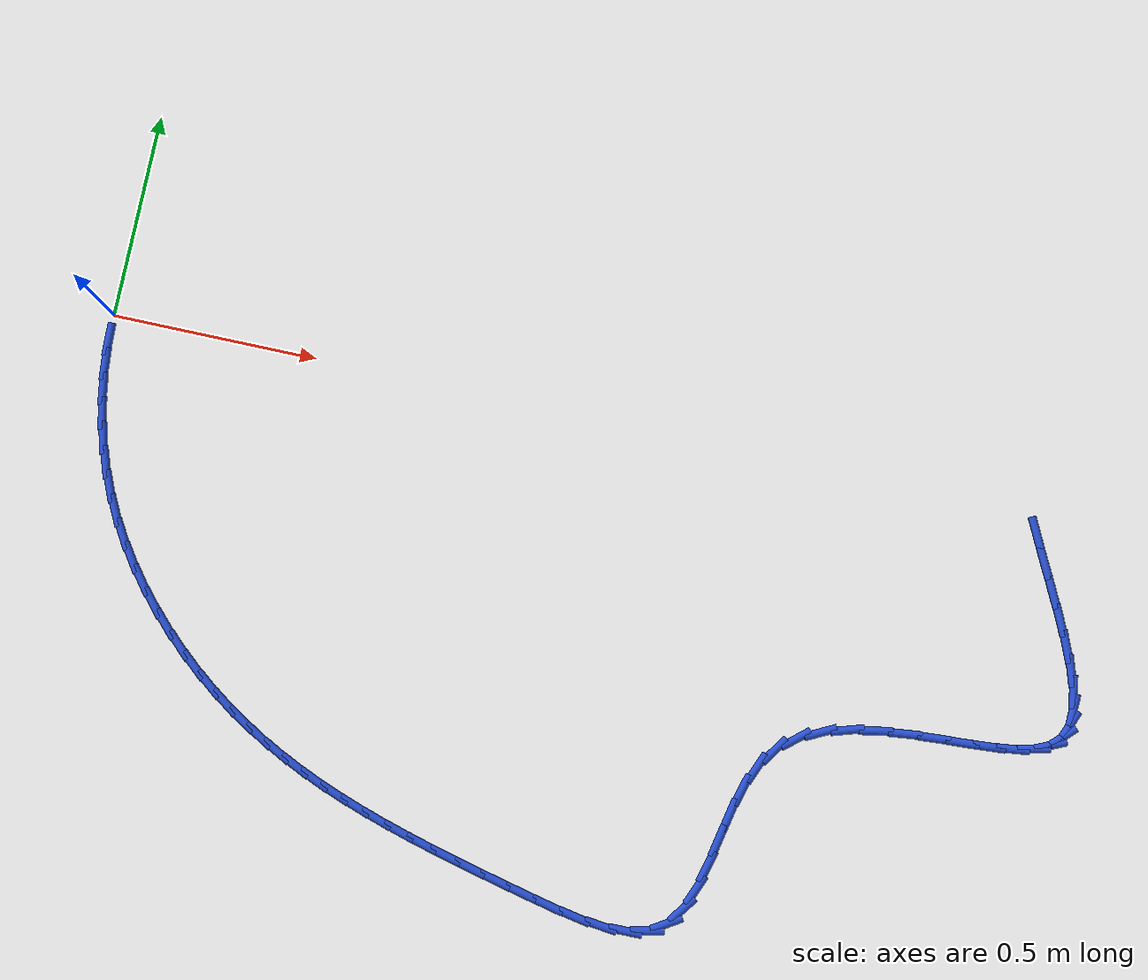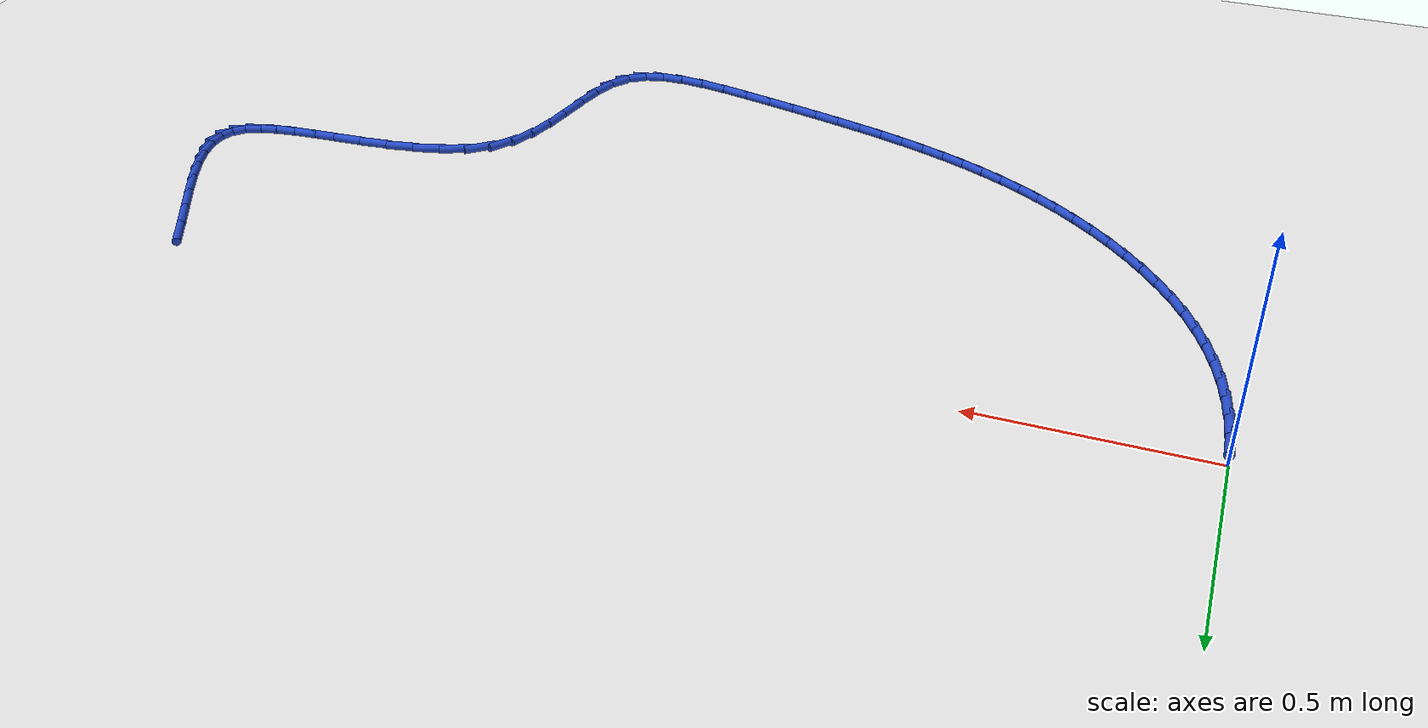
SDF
<sdf version="1.6">
 <world name="default">
  <model name="ground_plane">
   <static>1</static>
   <link name="link">
    <collision name="collision">
     <geometry><plane><normal>0 0 1</normal><size>100 100</size></plane></geometry>
     <surface><friction><ode><mu>100</mu><mu2>50</mu2></ode></friction></surface>
    </collision>
    <visual name="visual">
     <cast_shadows>0</cast_shadows>
     <geometry><plane><normal>0 0 1</normal><size>100 100</size></plane></geometry>
     <material>
      <script><uri>file://media/materials/scripts/gazebo.material</uri><name>Gazebo/WhiteGlow</name></script>
     </material>
    </visual>
   </link>
  </model>
  <model name="line">
   <link name="link_64">
    <pose>2.277415962909671 -0.04905458401612376 0.01 0 1.57 -1.1139004128579038</pose>
    <collision name="collision">
     <geometry><cylinder><radius>0.01</radius><length>0.08</length></cylinder></geometry>
    </collision>
    <visual name="visual">
     <material>
      <script><name>Gazebo/Blue</name><uri>file://media/materials/scripts/gazebo.material</uri></script>
     </material>
     <geometry><cylinder><radius>0.01</radius><length>0.08</length></cylinder></geometry>
    </visual>
   </link>
   <link name="link_65">
    <pose>2.3105045280904344 -0.11636404134737917 0.01 0 1.57 -1.1078029504991191</pose>
    <collision name="collision">
     <geometry><cylinder><radius>0.01</radius><length>0.08</length></cylinder></geometry>
    </collision>
    <visual name="visual">
     <material>
      <script><name>Gazebo/Blue</name><uri>file://media/materials/scripts/gazebo.material</uri></script>
     </material>
     <geometry><cylinder><radius>0.01</radius><length>0.08</length></cylinder></geometry>
    </visual>
   </link>
   <link name="link_66">
    <pose>2.342815457581411 -0.1810917331570403 0.01 0 1.57 -1.1156246526962605</pose>
    <collision name="collision">
     <geometry><cylinder><radius>0.01</radius><length>0.08</length></cylinder></geometry>
    </collision>
    <visual name="visual">
     <material>
      <script><name>Gazebo/Blue</name><uri>file://media/materials/scripts/gazebo.material</uri></script>
     </material>
     <geometry><cylinder><radius>0.01</radius><length>0.08</length></cylinder></geometry>
    </visual>
   </link>
   <link name="link_67">
    <pose>2.372957492521654 -0.2426752722185018 0.01 0 1.57 -1.140250100806513</pose>
    <collision name="collision">
     <geometry><cylinder><radius>0.01</radius><length>0.08</length></cylinder></geometry>
    </collision>
    <visual name="visual">
     <material>
      <script><name>Gazebo/Blue</name><uri>file://media/materials/scripts/gazebo.material</uri></script>
     </material>
     <geometry><cylinder><radius>0.01</radius><length>0.08</length></cylinder></geometry>
    </visual>
   </link>
   <link name="link_68">
    <pose>2.3995393740502147 -0.3005522713051553 0.01 0 1.57 -1.1872825748565017</pose>
    <collision name="collision">
     <geometry><cylinder><radius>0.01</radius><length>0.08</length></cylinder></geometry>
    </collision>
    <visual name="visual">
     <material>
      <script><name>Gazebo/Blue</name><uri>file://media/materials/scripts/gazebo.material</uri></script>
     </material>
     <geometry><cylinder><radius>0.01</radius><length>0.08</length></cylinder></geometry>
    </visual>
   </link>
   <link name="link_69">
    <pose>2.4211698433061435 -0.35416034319039524 0.01 0 1.57 -1.2670700414802465</pose>
    <collision name="collision">
     <geometry><cylinder><radius>0.01</radius><length>0.08</length></cylinder></geometry>
    </collision>
    <visual name="visual">
     <material>
      <script><name>Gazebo/Blue</name><uri>file://media/materials/scripts/gazebo.material</uri></script>
     </material>
     <geometry><cylinder><radius>0.01</radius><length>0.08</length></cylinder></geometry>
    </visual>
   </link>
   <link name="link_70">
    <pose>2.4364576414284933 -0.40293710064761584 0.01 0 1.57 -1.3984044047359458</pose>
    <collision name="collision">
     <geometry><cylinder><radius>0.01</radius><length>0.08</length></cylinder></geometry>
    </collision>
    <visual name="visual">
     <material>
      <script><name>Gazebo/Blue</name><uri>file://media/materials/scripts/gazebo.material</uri></script>
     </material>
     <geometry><cylinder><radius>0.01</radius><length>0.08</length></cylinder></geometry>
    </visual>
   </link>
   <link name="link_71">
    <pose>2.444011509556315 -0.4463201564502092 0.01 0 1.57 1.5288373166333862</pose>
    <collision name="collision">
     <geometry><cylinder><radius>0.01</radius><length>0.08</length></cylinder></geometry>
    </collision>
    <visual name="visual">
     <material>
      <script><name>Gazebo/Blue</name><uri>file://media/materials/scripts/gazebo.material</uri></script>
     </material>
     <geometry><cylinder><radius>0.01</radius><length>0.08</length></cylinder></geometry>
    </visual>
   </link>
   <link name="link_72">
    <pose>2.442440188828659 -0.4837471233715698 0.01 0 1.57 1.198001048514583</pose>
    <collision name="collision">
     <geometry><cylinder><radius>0.01</radius><length>0.08</length></cylinder></geometry>
    </collision>
    <visual name="visual">
     <material>
      <script><name>Gazebo/Blue</name><uri>file://media/materials/scripts/gazebo.material</uri></script>
     </material>
     <geometry><cylinder><radius>0.01</radius><length>0.08</length></cylinder></geometry>
    </visual>
   </link>
   <link name="link_73">
    <pose>2.430352420384578 -0.5146556141850908 0.01 0 1.57 0.781888419269544</pose>
    <collision name="collision">
     <geometry><cylinder><radius>0.01</radius><length>0.08</length></cylinder></geometry>
    </collision>
    <visual name="visual">
     <material>
      <script><name>Gazebo/Blue</name><uri>file://media/materials/scripts/gazebo.material</uri></script>
     </material>
     <geometry><cylinder><radius>0.01</radius><length>0.08</length></cylinder></geometry>
    </visual>
   </link>
   <link name="link_74">
    <pose>2.4063569453631235 -0.5384832416641662 0.01 0 1.57 0.42268801800073974</pose>
    <collision name="collision">
     <geometry><cylinder><radius>0.01</radius><length>0.08</length></cylinder></geometry>
    </collision>
    <visual name="visual">
     <material>
      <script><name>Gazebo/Blue</name><uri>file://media/materials/scripts/gazebo.material</uri></script>
     </material>
     <geometry><cylinder><radius>0.01</radius><length>0.08</length></cylinder></geometry>
    </visual>
   </link>
   <link name="link_75">
    <pose>2.369606912649377 -0.5550134251346599 0.01 0 1.57 0.2174437000796768</pose>
    <collision name="collision">
     <geometry><cylinder><radius>0.01</radius><length>0.08</length></cylinder></geometry>
    </collision>
    <visual name="visual">
     <material>
      <script><name>Gazebo/Blue</name><uri>file://media/materials/scripts/gazebo.material</uri></script>
     </material>
     <geometry><cylinder><radius>0.01</radius><length>0.08</length></cylinder></geometry>
    </visual>
   </link>
   <link name="link_76">
    <pose>2.321718084778618 -0.5655938304686093 0.01 0 1.57 0.11272263927887204</pose>
    <collision name="collision">
     <geometry><cylinder><radius>0.01</radius><length>0.08</length></cylinder></geometry>
    </collision>
    <visual name="visual">
     <material>
      <script><name>Gazebo/Blue</name><uri>file://media/materials/scripts/gazebo.material</uri></script>
     </material>
     <geometry><cylinder><radius>0.01</radius><length>0.08</length></cylinder></geometry>
    </visual>
   </link>
   <link name="link_77">
    <pose>2.265002207122613 -0.5720142102405655 0.01 0 1.57 0.06396545143943949</pose>
    <collision name="collision">
     <geometry><cylinder><radius>0.01</radius><length>0.08</length></cylinder></geometry>
    </collision>
    <visual name="visual">
     <material>
      <script><name>Gazebo/Blue</name><uri>file://media/materials/scripts/gazebo.material</uri></script>
     </material>
     <geometry><cylinder><radius>0.01</radius><length>0.08</length></cylinder></geometry>
    </visual>
   </link>
   <link name="link_78">
    <pose>2.2017710674508564 -0.5760643439560177 0.01 0 1.57 0.05140698552077976</pose>
    <collision name="collision">
     <geometry><cylinder><radius>0.01</radius><length>0.08</length></cylinder></geometry>
    </collision>
    <visual name="visual">
     <material>
      <script><name>Gazebo/Blue</name><uri>file://media/materials/scripts/gazebo.material</uri></script>
     </material>
     <geometry><cylinder><radius>0.01</radius><length>0.08</length></cylinder></geometry>
    </visual>
   </link>
   <link name="link_79">
    <pose>2.134336453532845 -0.5795340111204551 0.01 0 1.57 0.0673899357307334</pose>
    <collision name="collision">
     <geometry><cylinder><radius>0.01</radius><length>0.08</length></cylinder></geometry>
    </collision>
    <visual name="visual">
     <material>
      <script><name>Gazebo/Blue</name><uri>file://media/materials/scripts/gazebo.material</uri></script>
     </material>
     <geometry><cylinder><radius>0.01</radius><length>0.08</length></cylinder></geometry>
    </visual>
   </link>
   <link name="link_80">
    <pose>2.0650101531380707 -0.5842129912393667 0.01 0 1.57 0.1109701289549739</pose>
    <collision name="collision">
     <geometry><cylinder><radius>0.01</radius><length>0.08</length></cylinder></geometry>
    </collision>
    <visual name="visual">
     <material>
      <script><name>Gazebo/Blue</name><uri>file://media/materials/scripts/gazebo.material</uri></script>
     </material>
     <geometry><cylinder><radius>0.01</radius><length>0.08</length></cylinder></geometry>
    </visual>
   </link>
   <link name="link_81">
    <pose>1.9961039540360301 -0.591891063818242 0.01 0 1.57 0.18621293009156198</pose>
    <collision name="collision">
     <geometry><cylinder><radius>0.01</radius><length>0.08</length></cylinder></geometry>
    </collision>
    <visual name="visual">
     <material>
      <script><name>Gazebo/Blue</name><uri>file://media/materials/scripts/gazebo.material</uri></script>
     </material>
     <geometry><cylinder><radius>0.01</radius><length>0.08</length></cylinder></geometry>
    </visual>
   </link>
   <link name="link_82">
    <pose>1.9299296439962166 -0.6043580083625701 0.01 0 1.57 0.30202433172854215</pose>
    <collision name="collision">
     <geometry><cylinder><radius>0.01</radius><length>0.08</length></cylinder></geometry>
    </collision>
    <visual name="visual">
     <material>
      <script><name>Gazebo/Blue</name><uri>file://media/materials/scripts/gazebo.material</uri></script>
     </material>
     <geometry><cylinder><radius>0.01</radius><length>0.08</length></cylinder></geometry>
    </visual>
   </link>
   <link name="link_83">
    <pose>1.8687990107881243 -0.6234036043778408 0.01 0 1.57 0.4714486609626581</pose>
    <collision name="collision">
     <geometry><cylinder><radius>0.01</radius><length>0.08</length></cylinder></geometry>
    </collision>
    <visual name="visual">
     <material>
      <script><name>Gazebo/Blue</name><uri>file://media/materials/scripts/gazebo.material</uri></script>
     </material>
     <geometry><cylinder><radius>0.01</radius><length>0.08</length></cylinder></geometry>
    </visual>
   </link>
   <link name="link_84">
    <pose>1.8150238421812483 -0.6508176313695423 0.01 0 1.57 0.7055527711229687</pose>
    <collision name="collision">
     <geometry><cylinder><radius>0.01</radius><length>0.08</length></cylinder></geometry>
    </collision>
    <visual name="visual">
     <material>
      <script><name>Gazebo/Blue</name><uri>file://media/materials/scripts/gazebo.material</uri></script>
     </material>
     <geometry><cylinder><radius>0.01</radius><length>0.08</length></cylinder></geometry>
    </visual>
   </link>
   <link name="link_85">
    <pose>1.7709159259450837 -0.6883898688431644 0.01 0 1.57 0.979038200680518</pose>
    <collision name="collision">
     <geometry><cylinder><radius>0.01</radius><length>0.08</length></cylinder></geometry>
    </collision>
    <visual name="visual">
     <material>
      <script><name>Gazebo/Blue</name><uri>file://media/materials/scripts/gazebo.material</uri></script>
     </material>
     <geometry><cylinder><radius>0.01</radius><length>0.08</length></cylinder></geometry>
    </visual>
   </link>
   <link name="link_86">
    <pose>1.7380922059214672 -0.7372270630071999 0.01 0 1.57 1.1857155264179027</pose>
    <collision name="collision">
     <geometry><cylinder><radius>0.01</radius><length>0.08</length></cylinder></geometry>
    </collision>
    <visual name="visual">
     <material>
      <script><name>Gazebo/Blue</name><uri>file://media/materials/scripts/gazebo.material</uri></script>
     </material>
     <geometry><cylinder><radius>0.01</radius><length>0.08</length></cylinder></geometry>
    </visual>
   </link>
   <link name="link_87">
    <pose>1.7146754341534944 -0.7950011609020939 0.01 0 1.57 1.3086971403815737</pose>
    <collision name="collision">
     <geometry><cylinder><radius>0.01</radius><length>0.08</length></cylinder></geometry>
    </collision>
    <visual name="visual">
     <material>
      <script><name>Gazebo/Blue</name><uri>file://media/materials/scripts/gazebo.material</uri></script>
     </material>
     <geometry><cylinder><radius>0.01</radius><length>0.08</length></cylinder></geometry>
    </visual>
   </link>
   <link name="link_88">
    <pose>1.6976924020871407 -0.8583067775945455 0.01 0 1.57 1.3669928682828343</pose>
    <collision name="collision">
     <geometry><cylinder><radius>0.01</radius><length>0.08</length></cylinder></geometry>
    </collision>
    <visual name="visual">
     <material>
      <script><name>Gazebo/Blue</name><uri>file://media/materials/scripts/gazebo.material</uri></script>
     </material>
     <geometry><cylinder><radius>0.01</radius><length>0.08</length></cylinder></geometry>
    </visual>
   </link>
   <link name="link_89">
    <pose>1.6841695138917525 -0.9237381474573704 0.01 0 1.57 1.3703140044773763</pose>
    <collision name="collision">
     <geometry><cylinder><radius>0.01</radius><length>0.08</length></cylinder></geometry>
    </collision>
    <visual name="visual">
     <material>
      <script><name>Gazebo/Blue</name><uri>file://media/materials/scripts/gazebo.material</uri></script>
     </material>
     <geometry><cylinder><radius>0.01</radius><length>0.08</length></cylinder></geometry>
    </visual>
   </link>
   <link name="link_90">
    <pose>1.6711331737366777 -0.9878895048633854 0.01 0 1.57 1.3154466041169488</pose>
    <collision name="collision">
     <geometry><cylinder><radius>0.01</radius><length>0.08</length></cylinder></geometry>
    </collision>
    <visual name="visual">
     <material>
      <script><name>Gazebo/Blue</name><uri>file://media/materials/scripts/gazebo.material</uri></script>
     </material>
     <geometry><cylinder><radius>0.01</radius><length>0.08</length></cylinder></geometry>
    </visual>
   </link>
   <link name="link_91">
    <pose>1.6556097857912637 -1.0473550841854076 0.01 0 1.57 1.1830216417432096</pose>
    <collision name="collision">
     <geometry><cylinder><radius>0.01</radius><length>0.08</length></cylinder></geometry>
    </collision>
    <visual name="visual">
     <material>
      <script><name>Gazebo/Blue</name><uri>file://media/materials/scripts/gazebo.material</uri></script>
     </material>
     <geometry><cylinder><radius>0.01</radius><length>0.08</length></cylinder></geometry>
    </visual>
   </link>
   <link name="link_92">
    <pose>1.6346257542248577 -1.0987291197962517 0.01 0 1.57 0.9351941543530702</pose>
    <collision name="collision">
     <geometry><cylinder><radius>0.01</radius><length>0.08</length></cylinder></geometry>
    </collision>
    <visual name="visual">
     <material>
      <script><name>Gazebo/Blue</name><uri>file://media/materials/scripts/gazebo.material</uri></script>
     </material>
     <geometry><cylinder><radius>0.01</radius><length>0.08</length></cylinder></geometry>
    </visual>
   </link>
   <link name="link_93">
    <pose>1.6052074832068073 -1.1386058460687352 0.01 0 1.57 0.5590714284564633</pose>
    <collision name="collision">
     <geometry><cylinder><radius>0.01</radius><length>0.08</length></cylinder></geometry>
    </collision>
    <visual name="visual">
     <material>
      <script><name>Gazebo/Blue</name><uri>file://media/materials/scripts/gazebo.material</uri></script>
     </material>
     <geometry><cylinder><radius>0.01</radius><length>0.08</length></cylinder></geometry>
    </visual>
   </link>
   <link name="link_94">
    <pose>1.5647037231731504 -1.1639472959672288 0.01 0 1.57 0.22165427083780967</pose>
    <collision name="collision">
     <geometry><cylinder><radius>0.01</radius><length>0.08</length></cylinder></geometry>
    </collision>
    <visual name="visual">
     <material>
      <script><name>Gazebo/Blue</name><uri>file://media/materials/scripts/gazebo.material</uri></script>
     </material>
     <geometry><cylinder><radius>0.01</radius><length>0.08</length></cylinder></geometry>
    </visual>
   </link>
   <link name="link_95">
    <pose>1.5137239078298894 -1.1754359572530766 0.01 0 1.57 0.008122935167484045</pose>
    <collision name="collision">
     <geometry><cylinder><radius>0.01</radius><length>0.08</length></cylinder></geometry>
    </collision>
    <visual name="visual">
     <material>
      <script><name>Gazebo/Blue</name><uri>file://media/materials/scripts/gazebo.material</uri></script>
     </material>
     <geometry><cylinder><radius>0.01</radius><length>0.08</length></cylinder></geometry>
    </visual>
   </link>
   <link name="link_96">
    <pose>1.4547709958273392 -1.1759148384677796 0.01 0 1.57 -0.1184078209092296</pose>
    <collision name="collision">
     <geometry><cylinder><radius>0.01</radius><length>0.08</length></cylinder></geometry>
    </collision>
    <visual name="visual">
     <material>
      <script><name>Gazebo/Blue</name><uri>file://media/materials/scripts/gazebo.material</uri></script>
     </material>
     <geometry><cylinder><radius>0.01</radius><length>0.08</length></cylinder></geometry>
    </visual>
   </link>
   <link name="link_97">
    <pose>1.3903712777105466 -1.1682535699533902 0.01 0 1.57 -0.18978184930668995</pose>
    <collision name="collision">
     <geometry><cylinder><radius>0.01</radius><length>0.08</length></cylinder></geometry>
    </collision>
    <visual name="visual">
     <material>
      <script><name>Gazebo/Blue</name><uri>file://media/materials/scripts/gazebo.material</uri></script>
     </material>
     <geometry><cylinder><radius>0.01</radius><length>0.08</length></cylinder></geometry>
    </visual>
   </link>
   <link name="link_98">
    <pose>1.3230510440245566 -1.155321782051959 0.01 0 1.57 -0.22267834451417273</pose>
    <collision name="collision">
     <geometry><cylinder><radius>0.01</radius><length>0.08</length></cylinder></geometry>
    </collision>
    <visual name="visual">
     <material>
      <script><name>Gazebo/Blue</name><uri>file://media/materials/scripts/gazebo.material</uri></script>
     </material>
     <geometry><cylinder><radius>0.01</radius><length>0.08</length></cylinder></geometry>
    </visual>
   </link>
   <link name="link_99">
    <pose>1.2553364414405725 -1.1399889350039734 0.01 0 1.57 -0.23015458836300842</pose>
    <collision name="collision">
     <geometry><cylinder><radius>0.01</radius><length>0.08</length></cylinder></geometry>
    </collision>
    <visual name="visual">
     <material>
      <script><name>Gazebo/Blue</name><uri>file://media/materials/scripts/gazebo.material</uri></script>
     </material>
     <geometry><cylinder><radius>0.01</radius><length>0.08</length></cylinder></geometry>
    </visual>
   </link>
   <link name="link_100">
    <pose>1.1892240418662121 -1.1244983745729655 0.01 0 1.57 -0.2359132143067024</pose>
    <collision name="collision">
     <geometry><cylinder><radius>0.01</radius><length>0.08</length></cylinder></geometry>
    </collision>
    <visual name="visual">
     <material>
      <script><name>Gazebo/Blue</name><uri>file://media/materials/scripts/gazebo.material</uri></script>
     </material>
     <geometry><cylinder><radius>0.01</radius><length>0.08</length></cylinder></geometry>
    </visual>
   </link>
   <link name="link_101">
    <pose>1.1249876470798479 -1.109056621143777 0.01 0 1.57 -0.24484036221609756</pose>
    <collision name="collision">
     <geometry><cylinder><radius>0.01</radius><length>0.08</length></cylinder></geometry>
    </collision>
    <visual name="visual">
     <material>
      <script><name>Gazebo/Blue</name><uri>file://media/materials/scripts/gazebo.material</uri></script>
     </material>
     <geometry><cylinder><radius>0.01</radius><length>0.08</length></cylinder></geometry>
    </visual>
   </link>
   <link name="link_102">
    <pose>1.0625513347264262 -1.0934567174245664 0.01 0 1.57 -0.2571408426585355</pose>
    <collision name="collision">
     <geometry><cylinder><radius>0.01</radius><length>0.08</length></cylinder></geometry>
    </collision>
    <visual name="visual">
     <material>
      <script><name>Gazebo/Blue</name><uri>file://media/materials/scripts/gazebo.material</uri></script>
     </material>
     <geometry><cylinder><radius>0.01</radius><length>0.08</length></cylinder></geometry>
    </visual>
   </link>
   <link name="link_103">
    <pose>1.0018391824508974 -1.0774917061234928 0.01 0 1.57 -0.2729958306628432</pose>
    <collision name="collision">
     <geometry><cylinder><radius>0.01</radius><length>0.08</length></cylinder></geometry>
    </collision>
    <visual name="visual">
     <material>
      <script><name>Gazebo/Blue</name><uri>file://media/materials/scripts/gazebo.material</uri></script>
     </material>
     <geometry><cylinder><radius>0.01</radius><length>0.08</length></cylinder></geometry>
    </visual>
   </link>
   <link name="link_104">
    <pose>0.9427752678982079 -1.0609546299487143 0.01 0 1.57 -0.2925514262647571</pose>
    <collision name="collision">
     <geometry><cylinder><radius>0.01</radius><length>0.08</length></cylinder></geometry>
    </collision>
    <visual name="visual">
     <material>
      <script><name>Gazebo/Blue</name><uri>file://media/materials/scripts/gazebo.material</uri></script>
     </material>
     <geometry><cylinder><radius>0.01</radius><length>0.08</length></cylinder></geometry>
    </visual>
   </link>
   <link name="link_105">
    <pose>0.885283668713306 -1.0436385316083896 0.01 0 1.57 -0.3159049704056636</pose>
    <collision name="collision">
     <geometry><cylinder><radius>0.01</radius><length>0.08</length></cylinder></geometry>
    </collision>
    <visual name="visual">
     <material>
      <script><name>Gazebo/Blue</name><uri>file://media/materials/scripts/gazebo.material</uri></script>
     </material>
     <geometry><cylinder><radius>0.01</radius><length>0.08</length></cylinder></geometry>
    </visual>
   </link>
   <link name="link_106">
    <pose>0.8292884625411389 -1.0253364538106766 0.01 0 1.57 -0.34308955235635175</pose>
    <collision name="collision">
     <geometry><cylinder><radius>0.01</radius><length>0.08</length></cylinder></geometry>
    </collision>
    <visual name="visual">
     <material>
      <script><name>Gazebo/Blue</name><uri>file://media/materials/scripts/gazebo.material</uri></script>
     </material>
     <geometry><cylinder><radius>0.01</radius><length>0.08</length></cylinder></geometry>
    </visual>
   </link>
   <link name="link_107">
    <pose>0.7747137270266545 -1.0058414392637347 0.01 0 1.57 -0.3740577212080692</pose>
    <collision name="collision">
     <geometry><cylinder><radius>0.01</radius><length>0.08</length></cylinder></geometry>
    </collision>
    <visual name="visual">
     <material>
      <script><name>Gazebo/Blue</name><uri>file://media/materials/scripts/gazebo.material</uri></script>
     </material>
     <geometry><cylinder><radius>0.01</radius><length>0.08</length></cylinder></geometry>
    </visual>
   </link>
   <link name="link_108">
    <pose>0.721483539814802 -0.9849465306757221 0.01 0 1.57 -0.4086661166689178</pose>
    <collision name="collision">
     <geometry><cylinder><radius>0.01</radius><length>0.08</length></cylinder></geometry>
    </collision>
    <visual name="visual">
     <material>
      <script><name>Gazebo/Blue</name><uri>file://media/materials/scripts/gazebo.material</uri></script>
     </material>
     <geometry><cylinder><radius>0.01</radius><length>0.08</length></cylinder></geometry>
    </visual>
   </link>
   <link name="link_109">
    <pose>0.6695219785505282 -0.9624447707547977 0.01 0 1.57 -0.44666342742289245</pose>
    <collision name="collision">
     <geometry><cylinder><radius>0.01</radius><length>0.08</length></cylinder></geometry>
    </collision>
    <visual name="visual">
     <material>
      <script><name>Gazebo/Blue</name><uri>file://media/materials/scripts/gazebo.material</uri></script>
     </material>
     <geometry><cylinder><radius>0.01</radius><length>0.08</length></cylinder></geometry>
    </visual>
   </link>
   <link name="link_110">
    <pose>0.6187531208787805 -0.938129202209119 0.01 0 1.57 -0.48768453206932</pose>
    <collision name="collision">
     <geometry><cylinder><radius>0.01</radius><length>0.08</length></cylinder></geometry>
    </collision>
    <visual name="visual">
     <material>
      <script><name>Gazebo/Blue</name><uri>file://media/materials/scripts/gazebo.material</uri></script>
     </material>
     <geometry><cylinder><radius>0.01</radius><length>0.08</length></cylinder></geometry>
    </visual>
   </link>
   <link name="link_111">
    <pose>0.5691010444445085 -0.9117928677468461 0.01 0 1.57 -0.5312535813205506</pose>
    <collision name="collision">
     <geometry><cylinder><radius>0.01</radius><length>0.08</length></cylinder></geometry>
    </collision>
    <visual name="visual">
     <material>
      <script><name>Gazebo/Blue</name><uri>file://media/materials/scripts/gazebo.material</uri></script>
     </material>
     <geometry><cylinder><radius>0.01</radius><length>0.08</length></cylinder></geometry>
    </visual>
   </link>
   <link name="link_112">
    <pose>0.5204898268926589 -0.8832288100761365 0.01 0 1.57 -0.5767978964313729</pose>
    <collision name="collision">
     <geometry><cylinder><radius>0.01</radius><length>0.08</length></cylinder></geometry>
    </collision>
    <visual name="visual">
     <material>
      <script><name>Gazebo/Blue</name><uri>file://media/materials/scripts/gazebo.material</uri></script>
     </material>
     <geometry><cylinder><radius>0.01</radius><length>0.08</length></cylinder></geometry>
    </visual>
   </link>
   <link name="link_113">
    <pose>0.47284354586817956 -0.8522300719051488 0.01 0 1.57 -0.623672614214036</pose>
    <collision name="collision">
     <geometry><cylinder><radius>0.01</radius><length>0.08</length></cylinder></geometry>
    </collision>
    <visual name="visual">
     <material>
      <script><name>Gazebo/Blue</name><uri>file://media/materials/scripts/gazebo.material</uri></script>
     </material>
     <geometry><cylinder><radius>0.01</radius><length>0.08</length></cylinder></geometry>
    </visual>
   </link>
   <link name="link_114">
    <pose>0.4260864203290662 -0.8185898149992332 0.01 0 1.57 -0.6711308086852418</pose>
    <collision name="collision">
     <geometry><cylinder><radius>0.01</radius><length>0.08</length></cylinder></geometry>
    </collision>
    <visual name="visual">
     <material>
      <script><name>Gazebo/Blue</name><uri>file://media/materials/scripts/gazebo.material</uri></script>
     </material>
     <geometry><cylinder><radius>0.01</radius><length>0.08</length></cylinder></geometry>
    </visual>
   </link>
   <link name="link_115">
    <pose>0.3802427775038198 -0.7821855430138707 0.01 0 1.57 -0.7189205799660838</pose>
    <collision name="collision">
     <geometry><cylinder><radius>0.01</radius><length>0.08</length></cylinder></geometry>
    </collision>
    <visual name="visual">
     <material>
      <script><name>Gazebo/Blue</name><uri>file://media/materials/scripts/gazebo.material</uri></script>
     </material>
     <geometry><cylinder><radius>0.01</radius><length>0.08</length></cylinder></geometry>
    </visual>
   </link>
   <link name="link_116">
    <pose>0.3356126528452955 -0.7431270456349492 0.01 0 1.57 -0.7676028413239617</pose>
    <collision name="collision">
     <geometry><cylinder><radius>0.01</radius><length>0.08</length></cylinder></geometry>
    </collision>
    <visual name="visual">
     <material>
      <script><name>Gazebo/Blue</name><uri>file://media/materials/scripts/gazebo.material</uri></script>
     </material>
     <geometry><cylinder><radius>0.01</radius><length>0.08</length></cylinder></geometry>
    </visual>
   </link>
   <link name="link_117">
    <pose>0.2925431374956576 -0.7015637572825796 0.01 0 1.57 -0.81778945270979</pose>
    <collision name="collision">
     <geometry><cylinder><radius>0.01</radius><length>0.08</length></cylinder></geometry>
    </collision>
    <visual name="visual">
     <material>
      <script><name>Gazebo/Blue</name><uri>file://media/materials/scripts/gazebo.material</uri></script>
     </material>
     <geometry><cylinder><radius>0.01</radius><length>0.08</length></cylinder></geometry>
    </visual>
   </link>
   <link name="link_118">
    <pose>0.2513813225970705 -0.6576451123768731 0.01 0 1.57 -0.8700759254505759</pose>
    <collision name="collision">
     <geometry><cylinder><radius>0.01</radius><length>0.08</length></cylinder></geometry>
    </collision>
    <visual name="visual">
     <material>
      <script><name>Gazebo/Blue</name><uri>file://media/materials/scripts/gazebo.material</uri></script>
     </material>
     <geometry><cylinder><radius>0.01</radius><length>0.08</length></cylinder></geometry>
    </visual>
   </link>
   <link name="link_119">
    <pose>0.2124742992917009 -0.6115205453379429 0.01 0 1.57 -0.925049502274558</pose>
    <collision name="collision">
     <geometry><cylinder><radius>0.01</radius><length>0.08</length></cylinder></geometry>
    </collision>
    <visual name="visual">
     <material>
      <script><name>Gazebo/Blue</name><uri>file://media/materials/scripts/gazebo.material</uri></script>
     </material>
     <geometry><cylinder><radius>0.01</radius><length>0.08</length></cylinder></geometry>
    </visual>
   </link>
   <link name="link_120">
    <pose>0.176169158721713 -0.5633394905859004 0.01 0 1.57 -0.9832901637637691</pose>
    <collision name="collision">
     <geometry><cylinder><radius>0.01</radius><length>0.08</length></cylinder></geometry>
    </collision>
    <visual name="visual">
     <material>
      <script><name>Gazebo/Blue</name><uri>file://media/materials/scripts/gazebo.material</uri></script>
     </material>
     <geometry><cylinder><radius>0.01</radius><length>0.08</length></cylinder></geometry>
    </visual>
   </link>
   <link name="link_121">
    <pose>0.14281299202927203 -0.5132513825408571 0.01 0 1.57 -1.045362715652016</pose>
    <collision name="collision">
     <geometry><cylinder><radius>0.01</radius><length>0.08</length></cylinder></geometry>
    </collision>
    <visual name="visual">
     <material>
      <script><name>Gazebo/Blue</name><uri>file://media/materials/scripts/gazebo.material</uri></script>
     </material>
     <geometry><cylinder><radius>0.01</radius><length>0.08</length></cylinder></geometry>
    </visual>
   </link>
   <link name="link_122">
    <pose>0.11275287478392336 -0.4614056550026789 0.01 0 1.57 -1.1106994785125681</pose>
    <collision name="collision">
     <geometry><cylinder><radius>0.01</radius><length>0.08</length></cylinder></geometry>
    </collision>
    <visual name="visual">
     <material>
      <script><name>Gazebo/Blue</name><uri>file://media/materials/scripts/gazebo.material</uri></script>
     </material>
     <geometry><cylinder><radius>0.01</radius><length>0.08</length></cylinder></geometry>
    </visual>
   </link>
   <link name="link_123">
    <pose>0.08626127872127781 -0.4079487703556874 0.01 0 1.57 -1.175854877103233</pose>
    <collision name="collision">
     <geometry><cylinder><radius>0.01</radius><length>0.08</length></cylinder></geometry>
    </collision>
    <visual name="visual">
     <material>
      <script><name>Gazebo/Blue</name><uri>file://media/materials/scripts/gazebo.material</uri></script>
     </material>
     <geometry><cylinder><radius>0.01</radius><length>0.08</length></cylinder></geometry>
    </visual>
   </link>
   <link name="link_124">
    <pose>0.06336349309269661 -0.35301734588862455 0.01 0 1.57 -1.2399144581723383</pose>
    <collision name="collision">
     <geometry><cylinder><radius>0.01</radius><length>0.08</length></cylinder></geometry>
    </collision>
    <visual name="visual">
     <material>
      <script><name>Gazebo/Blue</name><uri>file://media/materials/scripts/gazebo.material</uri></script>
     </material>
     <geometry><cylinder><radius>0.01</radius><length>0.08</length></cylinder></geometry>
    </visual>
   </link>
   <link name="link_125">
    <pose>0.04403368221181238 -0.29674596262176234 0.01 0 1.57 -1.30272836813049</pose>
    <collision name="collision">
     <geometry><cylinder><radius>0.01</radius><length>0.08</length></cylinder></geometry>
    </collision>
    <visual name="visual">
     <material>
      <script><name>Gazebo/Blue</name><uri>file://media/materials/scripts/gazebo.material</uri></script>
     </material>
     <geometry><cylinder><radius>0.01</radius><length>0.08</length></cylinder></geometry>
    </visual>
   </link>
   <link name="link_126">
    <pose>0.028246010392257867 -0.2392692015753724 0.01 0 1.57 -1.3641905353425583</pose>
    <collision name="collision">
     <geometry><cylinder><radius>0.01</radius><length>0.08</length></cylinder></geometry>
    </collision>
    <visual name="visual">
     <material>
      <script><name>Gazebo/Blue</name><uri>file://media/materials/scripts/gazebo.material</uri></script>
     </material>
     <geometry><cylinder><radius>0.01</radius><length>0.08</length></cylinder></geometry>
    </visual>
   </link>
   <link name="link_127">
    <pose>0.01597464194766654 -0.18072164376972907 0.01 0 1.57 -1.424236361129202</pose>
    <collision name="collision">
     <geometry><cylinder><radius>0.01</radius><length>0.08</length></cylinder></geometry>
    </collision>
    <visual name="visual">
     <material>
      <script><name>Gazebo/Blue</name><uri>file://media/materials/scripts/gazebo.material</uri></script>
     </material>
     <geometry><cylinder><radius>0.01</radius><length>0.08</length></cylinder></geometry>
    </visual>
   </link>
   <link name="link_128">
    <pose>0.007193741191671128 -0.12123787022510422 0.01 0 1.57 -1.4828388586372565</pose>
    <collision name="collision">
     <geometry><cylinder><radius>0.01</radius><length>0.08</length></cylinder></geometry>
    </collision>
    <visual name="visual">
     <material>
      <script><name>Gazebo/Blue</name><uri>file://media/materials/scripts/gazebo.material</uri></script>
     </material>
     <geometry><cylinder><radius>0.01</radius><length>0.08</length></cylinder></geometry>
    </visual>
   </link>
   <link name="link_129">
    <pose>0.0018774724379046048 -0.06095246196177017 0.01 0 1.57 -1.540003821503761</pose>
    <collision name="collision">
     <geometry><cylinder><radius>0.01</radius><length>0.08</length></cylinder></geometry>
    </collision>
    <visual name="visual">
     <material>
      <script><name>Gazebo/Blue</name><uri>file://media/materials/scripts/gazebo.material</uri></script>
     </material>
     <geometry><cylinder><radius>0.01</radius><length>0.08</length></cylinder></geometry>
    </visual>
   </link>
  </model>
 </world>
</sdf>
